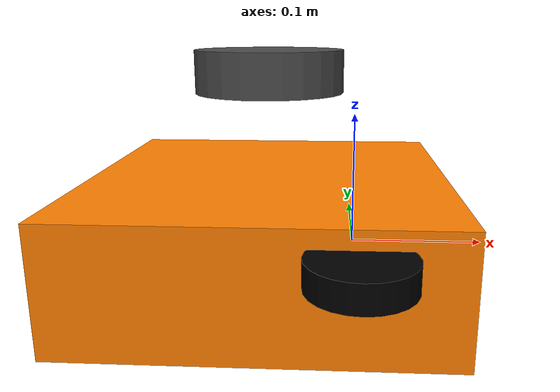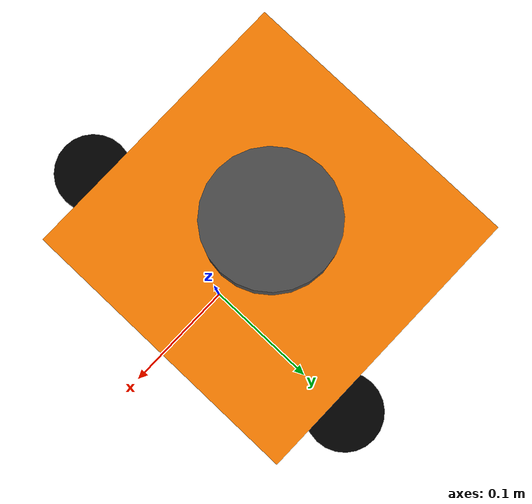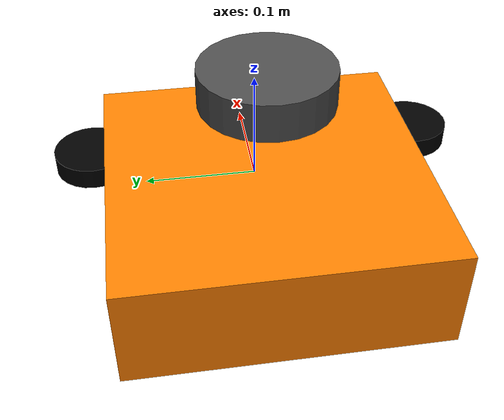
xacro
<?xml version="1.0" ?>
<robot name="turtlebot3_waffle_pi" xmlns:xacro="http://ros.org/wiki/xacro">

  <link name="base_footprint"/>

  <joint name="base_joint" type="fixed">
    <parent link="base_footprint"/>
    <child link="base_link"/>
    <origin xyz="0.0 0.0 0.010" rpy="0 0 0"/>
  </joint>

  <link name="base_link">
    <visual>
      <origin xyz="-0.064 0 0.0" rpy="0 0 0"/>
      <geometry>
        <box size="0.265 0.265 0.089"/>
      </geometry>
      <material name="Orange">
          <color rgba="1.0 0.5 0.0 1.0"/>
      </material>
    </visual>
    <collision>
      <origin xyz="-0.064 0 0.047" rpy="0 0 0"/>
      <geometry>
        <box size="0.265 0.265 0.089"/>
      </geometry>
    </collision>
    <inertial>
      <origin xyz="0 0 0" rpy="0 0 0"/>
      <mass value="1.3729096"/>
      <inertia ixx="0.0087002718" ixy="-0.000047576583" ixz="0.00011160499"
               iyy="0.0086195418" iyz="-0.0000035422299"
               izz="0.014653337" />
    </inertial>
  </link>

  <joint name="wheel_left_joint" type="continuous">
    <parent link="base_link"/>
    <child link="wheel_left_link"/>
    <origin xyz="0.0 0.144 0.023" rpy="-1.57 0 0"/>
    <axis xyz="0 0 1"/>
  </joint>

  <link name="wheel_left_link">
    <visual>
      <origin xyz="0 0 0" rpy="1.57 0 0"/>
      <geometry>
        <cylinder length="0.018" radius="0.033"/>
      </geometry>
      <material name="black">
          <color rgba="0 0 0 1"/>
      </material>
    </visual>
    <collision>
      <origin xyz="0 0 0" rpy="0 0 0"/>
      <geometry>
        <cylinder length="0.018" radius="0.033"/>
      </geometry>
    </collision>
    <inertial>
      <origin xyz="0 0 0" />
      <mass value="0.028498940" />
      <inertia ixx="0.000011175580" ixy="-0.000000000042269582" ixz="-0.000000000028800741"
               iyy="0.000011192413" iyz="-0.0000000000011556285"
               izz="0.000020712558" />
    </inertial>
  </link>

  <joint name="wheel_right_joint" type="continuous">
    <parent link="base_link"/>
    <child link="wheel_right_link"/>
    <origin xyz="0.0 -0.144 0.023" rpy="-1.57 0 0"/>
    <axis xyz="0 0 1"/>
  </joint>

  <link name="wheel_right_link">
    <visual>
      <origin xyz="0 0 0" rpy="1.57 0 0"/>
      <geometry>
        <cylinder length="0.018" radius="0.033"/>
      </geometry>
      <material name="black">
          <color rgba="0 0 0 1"/>
      </material>
    </visual>
    <collision>
      <origin xyz="0 0 0" rpy="0 0 0"/>
      <geometry>
        <cylinder length="0.018" radius="0.033"/>
      </geometry>
    </collision>
    <inertial>
      <origin xyz="0 0 0" />
      <mass value="0.028498940" />
      <inertia ixx="0.000011175580" ixy="-0.000000000042269582" ixz="-0.000000000028800741"
               iyy="0.000011192413" iyz="-0.0000000000011556285"
               izz="0.000020712558" />
    </inertial>
  </link>

  <joint name="caster_back_right_joint" type="fixed">
    <parent link="base_link"/>
    <child link="caster_back_right_link"/>
    <origin xyz="-0.177 -0.064 -0.004" rpy="-1.57 0 0"/>
  </joint>

  <link name="caster_back_right_link">
    <collision>
      <origin xyz="0 0.001 0" rpy="0 0 0"/>
      <geometry>
        <box size="0.030 0.009 0.020"/>
      </geometry>
    </collision>
    <inertial>
      <origin xyz="0 0 0" />
      <mass value="0.005" />
      <inertia ixx="0.001" ixy="0.0" ixz="0.0"
               iyy="0.001" iyz="0.0"
               izz="0.001" />
    </inertial>
  </link>

  <joint name="caster_back_left_joint" type="fixed">
    <parent link="base_link"/>
    <child link="caster_back_left_link"/>
    <origin xyz="-0.177 0.064 -0.004" rpy="-1.57 0 0"/>
  </joint>

  <link name="caster_back_left_link">
    <collision>
      <origin xyz="0 0.001 0" rpy="0 0 0"/>
      <geometry>
        <box size="0.030 0.009 0.020"/>
      </geometry>
    </collision>
    <inertial>
      <origin xyz="0 0 0" />
      <mass value="0.005" />
      <inertia ixx="0.001" ixy="0.0" ixz="0.0"
               iyy="0.001" iyz="0.0"
               izz="0.001" />
    </inertial>
  </link>

  <joint name="scan_joint" type="fixed">
    <parent link="base_link"/>
    <child link="base_scan"/>
    <origin xyz="-0.064 0 0.122" rpy="0 0 0"/>
  </joint>

  <link name="base_scan">
    <visual>
      <origin xyz="0 0 0" rpy="0 0 0"/>
      <geometry>
        <cylinder length="0.0315" radius="0.055"/>
      </geometry>
      <material name="dark_grey"/>
    </visual>
    <collision>
      <origin xyz="0 0 0" rpy="0 0 0"/>
      <geometry>
        <cylinder length="0.0315" radius="0.055"/>
      </geometry>
    </collision>
    <inertial>
      <mass value="0.114" />
      <origin xyz="0 0 0" />
      <inertia ixx="0.001" ixy="0.0" ixz="0.0"
               iyy="0.001" iyz="0.0"
               izz="0.001" />
    </inertial>
  </link>

  <gazebo>
    <plugin filename="ign_ros2_control-system" name="ign_ros2_control::IgnitionROS2ControlPlugin">
      <parameters>$(find arion_simulation)/config/ros2_control.yaml</parameters>
    </plugin>

    <plugin filename="ignition-gazebo-diff-drive-system" name="ignition::gazebo::systems::DiffDrive">
      <left_joint>wheel_left_joint</left_joint>
      <right_joint>wheel_right_joint</right_joint>
      <wheel_separation>0.287</wheel_separation>
      <wheel_radius>0.033</wheel_radius>
      <odom_publish_frequency>30</odom_publish_frequency>
      <topic>cmd_vel</topic>
      <odom_topic>odom</odom_topic>
      <tf_topic>tf</tf_topic>
      <frame_id>odom</frame_id>
      <child_frame_id>base_footprint</child_frame_id>
    </plugin>

    <plugin filename="ignition-gazebo-joint-state-publisher-system" name="ignition::gazebo::systems::JointStatePublisher">
      <topic>joint_states</topic>
    </plugin>
  </gazebo>

  <gazebo reference="base_scan">
    <sensor name="hls_lfcd_lds" type="gpu_lidar">
      <ignition_frame_id>base_scan</ignition_frame_id>
      <topic>scan</topic>
      <update_rate>5</update_rate>
      <ray>
        <scan>
          <horizontal>
            <samples>360</samples>
            <resolution>1</resolution>
            <min_angle>0.0</min_angle>
            <max_angle>6.28319</max_angle>
          </horizontal>
        </scan>
        <range>
          <min>0.120</min>
          <max>3.5</max>
          <resolution>0.015</resolution>
        </range>
      </ray>
      <always_on>1</always_on>
      <visualize>true</visualize>
    </sensor>
  </gazebo>

</robot>
